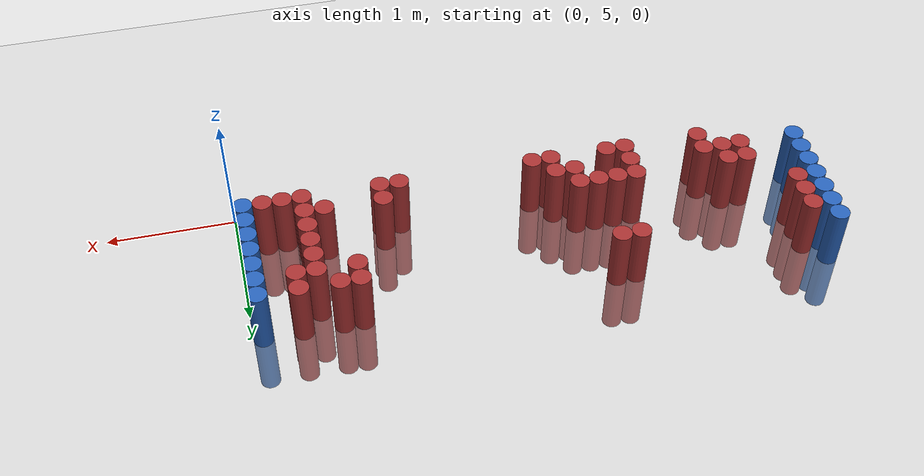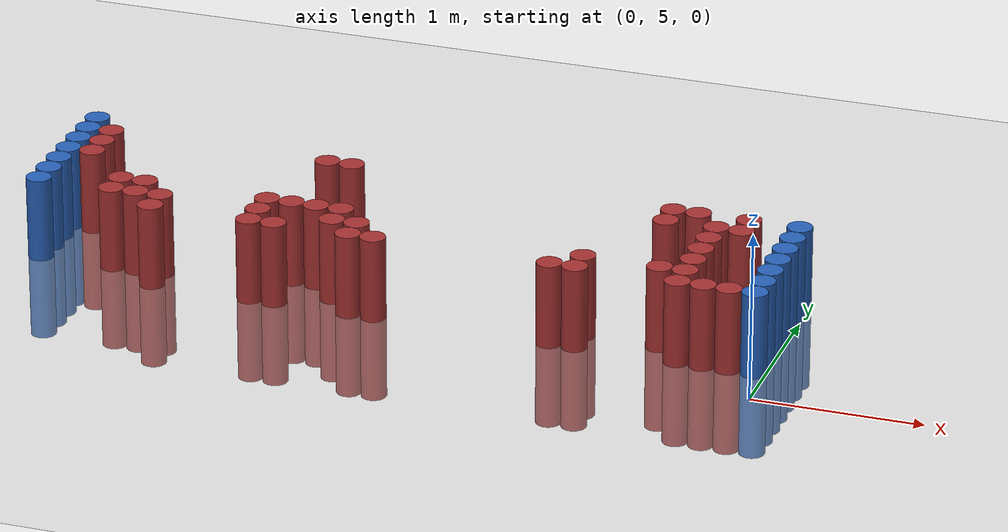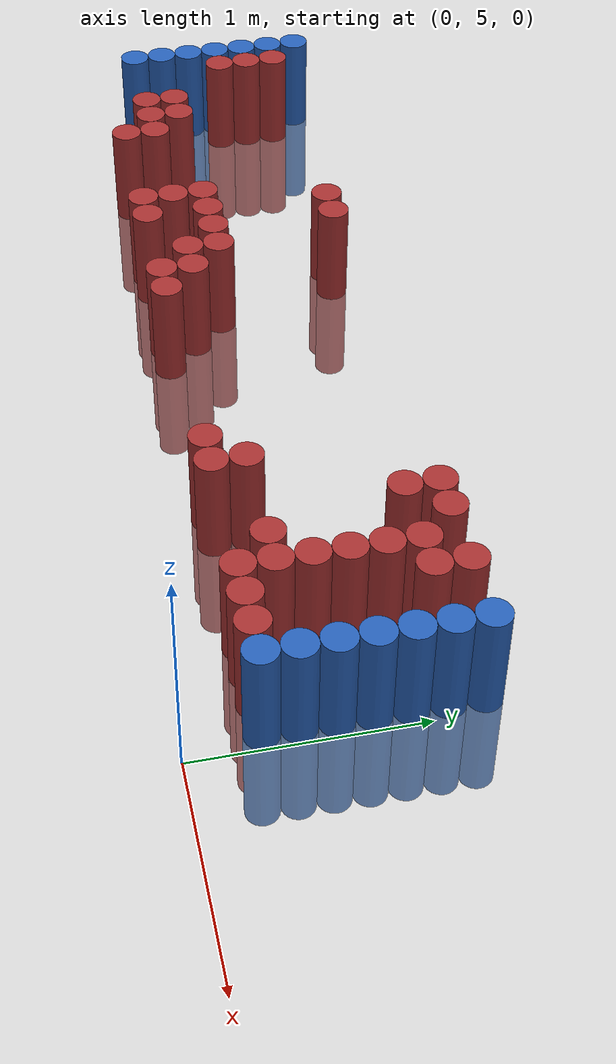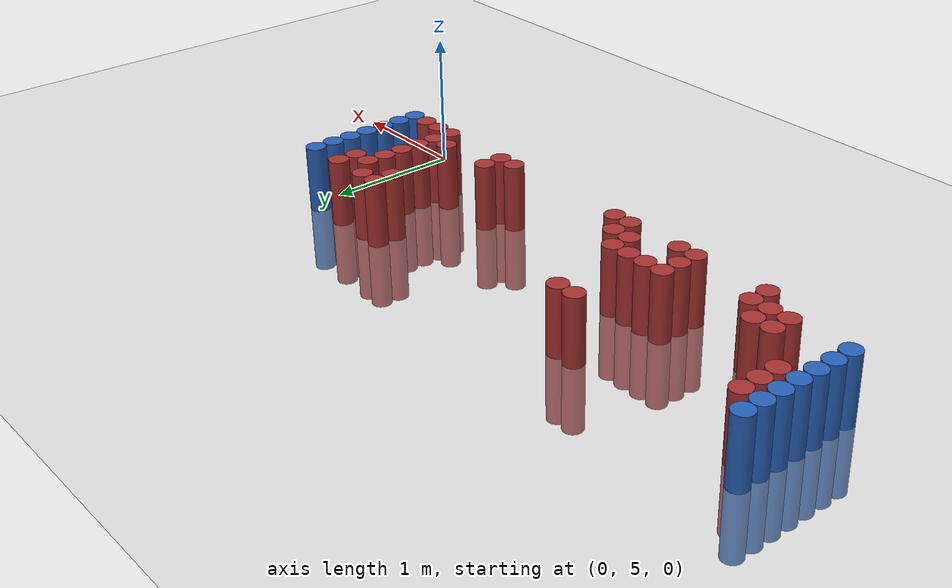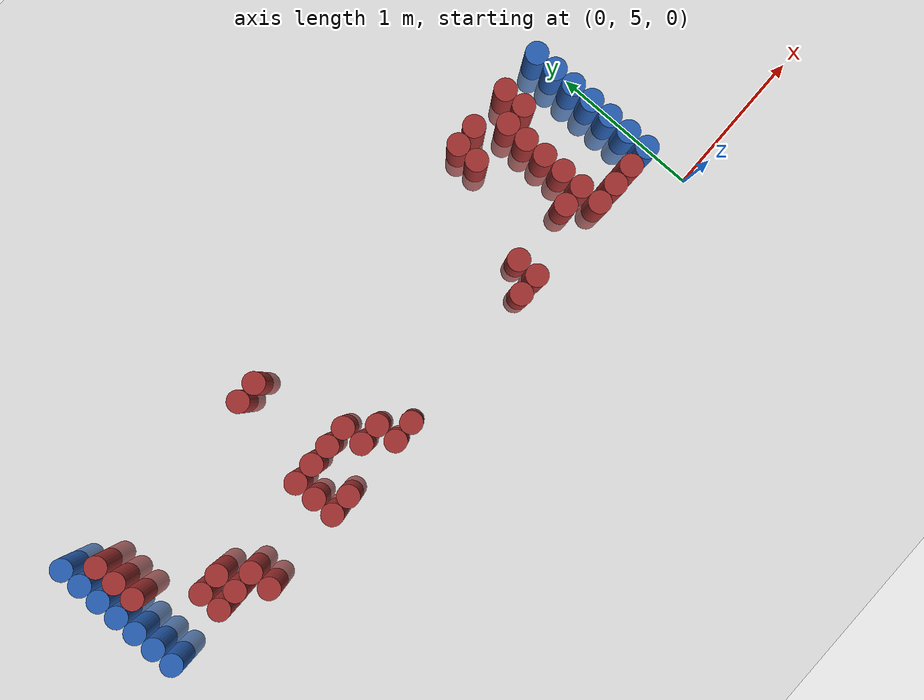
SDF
<sdf version="1.6">
 <world name="default">
  <model name="ground_plane">
   <static>1</static>
   <link name="link">
    <collision name="collision">
     <geometry><plane><normal>0 0 1</normal><size>100 100</size></plane></geometry>
     <surface><friction><ode><mu>100</mu><mu2>50</mu2></ode></friction></surface>
    </collision>
    <visual name="visual">
     <cast_shadows>0</cast_shadows>
     <geometry><plane><normal>0 0 1</normal><size>100 100</size></plane></geometry>
     <material>
      <script><uri>file://media/materials/scripts/gazebo.material</uri><name>Gazebo/Grey</name></script>
     </material>
    </visual>
   </link>
  </model>
  <model name="unit_cylinder_98">
   <static>1</static>
   <pose>-4.425000 5.475000 0.000000 0.000000 0.000000 0.000000</pose>
   <link name="link">
    <inertial>
     <mass>1</mass>
     <inertia><ixx>0.145833</ixx><ixy>0</ixy><ixz>0</ixz><iyy>0.145833</iyy><iyz>0</iyz><izz>0.125</izz></inertia>
    </inertial>
    <collision name="collision">
     <geometry><cylinder><radius>0.075000</radius><length>1</length></cylinder></geometry>
    </collision>
    <visual name="visual">
     <geometry><cylinder><radius>0.075000</radius><length>1</length></cylinder></geometry>
     <material>
      <ambient>0.152000 0.379000 0.720000 1</ambient>
      <diffuse>0.152000 0.379000 0.720000 1</diffuse>
     </material>
     <material>
      <script><name>Gazebo/Grey</name><uri>file://media/materials/scripts/gazebo.material</uri></script>
     </material>
    </visual>
   </link>
  </model>
  <model name="unit_cylinder_99">
   <static>1</static>
   <pose>-4.425000 5.625000 0.000000 0.000000 0.000000 0.000000</pose>
   <link name="link">
    <inertial>
     <mass>1</mass>
     <inertia><ixx>0.145833</ixx><ixy>0</ixy><ixz>0</ixz><iyy>0.145833</iyy><iyz>0</iyz><izz>0.125</izz></inertia>
    </inertial>
    <collision name="collision">
     <geometry><cylinder><radius>0.075000</radius><length>1</length></cylinder></geometry>
    </collision>
    <visual name="visual">
     <geometry><cylinder><radius>0.075000</radius><length>1</length></cylinder></geometry>
     <material>
      <ambient>0.152000 0.379000 0.720000 1</ambient>
      <diffuse>0.152000 0.379000 0.720000 1</diffuse>
     </material>
     <material>
      <script><name>Gazebo/Grey</name><uri>file://media/materials/scripts/gazebo.material</uri></script>
     </material>
    </visual>
   </link>
  </model>
  <model name="unit_cylinder_100">
   <static>1</static>
   <pose>-4.425000 5.775000 0.000000 0.000000 0.000000 0.000000</pose>
   <link name="link">
    <inertial>
     <mass>1</mass>
     <inertia><ixx>0.145833</ixx><ixy>0</ixy><ixz>0</ixz><iyy>0.145833</iyy><iyz>0</iyz><izz>0.125</izz></inertia>
    </inertial>
    <collision name="collision">
     <geometry><cylinder><radius>0.075000</radius><length>1</length></cylinder></geometry>
    </collision>
    <visual name="visual">
     <geometry><cylinder><radius>0.075000</radius><length>1</length></cylinder></geometry>
     <material>
      <ambient>0.152000 0.379000 0.720000 1</ambient>
      <diffuse>0.152000 0.379000 0.720000 1</diffuse>
     </material>
     <material>
      <script><name>Gazebo/Grey</name><uri>file://media/materials/scripts/gazebo.material</uri></script>
     </material>
    </visual>
   </link>
  </model>
  <model name="unit_cylinder_101">
   <static>1</static>
   <pose>-4.425000 5.925000 0.000000 0.000000 0.000000 0.000000</pose>
   <link name="link">
    <inertial>
     <mass>1</mass>
     <inertia><ixx>0.145833</ixx><ixy>0</ixy><ixz>0</ixz><iyy>0.145833</iyy><iyz>0</iyz><izz>0.125</izz></inertia>
    </inertial>
    <collision name="collision">
     <geometry><cylinder><radius>0.075000</radius><length>1</length></cylinder></geometry>
    </collision>
    <visual name="visual">
     <geometry><cylinder><radius>0.075000</radius><length>1</length></cylinder></geometry>
     <material>
      <ambient>0.152000 0.379000 0.720000 1</ambient>
      <diffuse>0.152000 0.379000 0.720000 1</diffuse>
     </material>
     <material>
      <script><name>Gazebo/Grey</name><uri>file://media/materials/scripts/gazebo.material</uri></script>
     </material>
    </visual>
   </link>
  </model>
  <model name="unit_cylinder_102">
   <static>1</static>
   <pose>-4.425000 6.075000 0.000000 0.000000 0.000000 0.000000</pose>
   <link name="link">
    <inertial>
     <mass>1</mass>
     <inertia><ixx>0.145833</ixx><ixy>0</ixy><ixz>0</ixz><iyy>0.145833</iyy><iyz>0</iyz><izz>0.125</izz></inertia>
    </inertial>
    <collision name="collision">
     <geometry><cylinder><radius>0.075000</radius><length>1</length></cylinder></geometry>
    </collision>
    <visual name="visual">
     <geometry><cylinder><radius>0.075000</radius><length>1</length></cylinder></geometry>
     <material>
      <ambient>0.152000 0.379000 0.720000 1</ambient>
      <diffuse>0.152000 0.379000 0.720000 1</diffuse>
     </material>
     <material>
      <script><name>Gazebo/Grey</name><uri>file://media/materials/scripts/gazebo.material</uri></script>
     </material>
    </visual>
   </link>
  </model>
  <model name="unit_cylinder_103">
   <static>1</static>
   <pose>-4.425000 6.225000 0.000000 0.000000 0.000000 0.000000</pose>
   <link name="link">
    <inertial>
     <mass>1</mass>
     <inertia><ixx>0.145833</ixx><ixy>0</ixy><ixz>0</ixz><iyy>0.145833</iyy><iyz>0</iyz><izz>0.125</izz></inertia>
    </inertial>
    <collision name="collision">
     <geometry><cylinder><radius>0.075000</radius><length>1</length></cylinder></geometry>
    </collision>
    <visual name="visual">
     <geometry><cylinder><radius>0.075000</radius><length>1</length></cylinder></geometry>
     <material>
      <ambient>0.152000 0.379000 0.720000 1</ambient>
      <diffuse>0.152000 0.379000 0.720000 1</diffuse>
     </material>
     <material>
      <script><name>Gazebo/Grey</name><uri>file://media/materials/scripts/gazebo.material</uri></script>
     </material>
    </visual>
   </link>
  </model>
  <model name="unit_cylinder_104">
   <static>1</static>
   <pose>-4.425000 6.375000 0.000000 0.000000 0.000000 0.000000</pose>
   <link name="link">
    <inertial>
     <mass>1</mass>
     <inertia><ixx>0.145833</ixx><ixy>0</ixy><ixz>0</ixz><iyy>0.145833</iyy><iyz>0</iyz><izz>0.125</izz></inertia>
    </inertial>
    <collision name="collision">
     <geometry><cylinder><radius>0.075000</radius><length>1</length></cylinder></geometry>
    </collision>
    <visual name="visual">
     <geometry><cylinder><radius>0.075000</radius><length>1</length></cylinder></geometry>
     <material>
      <ambient>0.152000 0.379000 0.720000 1</ambient>
      <diffuse>0.152000 0.379000 0.720000 1</diffuse>
     </material>
     <material>
      <script><name>Gazebo/Grey</name><uri>file://media/materials/scripts/gazebo.material</uri></script>
     </material>
    </visual>
   </link>
  </model>
  <model name="unit_cylinder_127">
   <static>1</static>
   <pose>-4.275000 5.925000 0.000000 0.000000 0.000000 0.000000</pose>
   <link name="link">
    <inertial>
     <mass>1</mass>
     <inertia><ixx>0.145833</ixx><ixy>0</ixy><ixz>0</ixz><iyy>0.145833</iyy><iyz>0</iyz><izz>0.125</izz></inertia>
    </inertial>
    <collision name="collision">
     <geometry><cylinder><radius>0.075000</radius><length>1</length></cylinder></geometry>
    </collision>
    <visual name="visual">
     <geometry><cylinder><radius>0.075000</radius><length>1</length></cylinder></geometry>
     <material>
      <ambient>0.648000 0.192000 0.192000 1</ambient>
      <diffuse>0.648000 0.192000 0.192000 1</diffuse>
     </material>
     <material>
      <script><name>Gazebo/Grey</name><uri>file://media/materials/scripts/gazebo.material</uri></script>
     </material>
    </visual>
   </link>
  </model>
  <model name="unit_cylinder_128">
   <static>1</static>
   <pose>-4.275000 6.075000 0.000000 0.000000 0.000000 0.000000</pose>
   <link name="link">
    <inertial>
     <mass>1</mass>
     <inertia><ixx>0.145833</ixx><ixy>0</ixy><ixz>0</ixz><iyy>0.145833</iyy><iyz>0</iyz><izz>0.125</izz></inertia>
    </inertial>
    <collision name="collision">
     <geometry><cylinder><radius>0.075000</radius><length>1</length></cylinder></geometry>
    </collision>
    <visual name="visual">
     <geometry><cylinder><radius>0.075000</radius><length>1</length></cylinder></geometry>
     <material>
      <ambient>0.648000 0.192000 0.192000 1</ambient>
      <diffuse>0.648000 0.192000 0.192000 1</diffuse>
     </material>
     <material>
      <script><name>Gazebo/Grey</name><uri>file://media/materials/scripts/gazebo.material</uri></script>
     </material>
    </visual>
   </link>
  </model>
  <model name="unit_cylinder_129">
   <static>1</static>
   <pose>-4.275000 6.225000 0.000000 0.000000 0.000000 0.000000</pose>
   <link name="link">
    <inertial>
     <mass>1</mass>
     <inertia><ixx>0.145833</ixx><ixy>0</ixy><ixz>0</ixz><iyy>0.145833</iyy><iyz>0</iyz><izz>0.125</izz></inertia>
    </inertial>
    <collision name="collision">
     <geometry><cylinder><radius>0.075000</radius><length>1</length></cylinder></geometry>
    </collision>
    <visual name="visual">
     <geometry><cylinder><radius>0.075000</radius><length>1</length></cylinder></geometry>
     <material>
      <ambient>0.648000 0.192000 0.192000 1</ambient>
      <diffuse>0.648000 0.192000 0.192000 1</diffuse>
     </material>
     <material>
      <script><name>Gazebo/Grey</name><uri>file://media/materials/scripts/gazebo.material</uri></script>
     </material>
    </visual>
   </link>
  </model>
  <model name="unit_cylinder_148">
   <static>1</static>
   <pose>-3.975000 5.475000 0.000000 0.000000 0.000000 0.000000</pose>
   <link name="link">
    <inertial>
     <mass>1</mass>
     <inertia><ixx>0.145833</ixx><ixy>0</ixy><ixz>0</ixz><iyy>0.145833</iyy><iyz>0</iyz><izz>0.125</izz></inertia>
    </inertial>
    <collision name="collision">
     <geometry><cylinder><radius>0.075000</radius><length>1</length></cylinder></geometry>
    </collision>
    <visual name="visual">
     <geometry><cylinder><radius>0.075000</radius><length>1</length></cylinder></geometry>
     <material>
      <ambient>0.648000 0.192000 0.192000 1</ambient>
      <diffuse>0.648000 0.192000 0.192000 1</diffuse>
     </material>
     <material>
      <script><name>Gazebo/Grey</name><uri>file://media/materials/scripts/gazebo.material</uri></script>
     </material>
    </visual>
   </link>
  </model>
  <model name="unit_cylinder_149">
   <static>1</static>
   <pose>-3.975000 5.625000 0.000000 0.000000 0.000000 0.000000</pose>
   <link name="link">
    <inertial>
     <mass>1</mass>
     <inertia><ixx>0.145833</ixx><ixy>0</ixy><ixz>0</ixz><iyy>0.145833</iyy><iyz>0</iyz><izz>0.125</izz></inertia>
    </inertial>
    <collision name="collision">
     <geometry><cylinder><radius>0.075000</radius><length>1</length></cylinder></geometry>
    </collision>
    <visual name="visual">
     <geometry><cylinder><radius>0.075000</radius><length>1</length></cylinder></geometry>
     <material>
      <ambient>0.648000 0.192000 0.192000 1</ambient>
      <diffuse>0.648000 0.192000 0.192000 1</diffuse>
     </material>
     <material>
      <script><name>Gazebo/Grey</name><uri>file://media/materials/scripts/gazebo.material</uri></script>
     </material>
    </visual>
   </link>
  </model>
  <model name="unit_cylinder_153">
   <static>1</static>
   <pose>-3.825000 5.475000 0.000000 0.000000 0.000000 0.000000</pose>
   <link name="link">
    <inertial>
     <mass>1</mass>
     <inertia><ixx>0.145833</ixx><ixy>0</ixy><ixz>0</ixz><iyy>0.145833</iyy><iyz>0</iyz><izz>0.125</izz></inertia>
    </inertial>
    <collision name="collision">
     <geometry><cylinder><radius>0.075000</radius><length>1</length></cylinder></geometry>
    </collision>
    <visual name="visual">
     <geometry><cylinder><radius>0.075000</radius><length>1</length></cylinder></geometry>
     <material>
      <ambient>0.648000 0.192000 0.192000 1</ambient>
      <diffuse>0.648000 0.192000 0.192000 1</diffuse>
     </material>
     <material>
      <script><name>Gazebo/Grey</name><uri>file://media/materials/scripts/gazebo.material</uri></script>
     </material>
    </visual>
   </link>
  </model>
  <model name="unit_cylinder_154">
   <static>1</static>
   <pose>-3.825000 5.625000 0.000000 0.000000 0.000000 0.000000</pose>
   <link name="link">
    <inertial>
     <mass>1</mass>
     <inertia><ixx>0.145833</ixx><ixy>0</ixy><ixz>0</ixz><iyy>0.145833</iyy><iyz>0</iyz><izz>0.125</izz></inertia>
    </inertial>
    <collision name="collision">
     <geometry><cylinder><radius>0.075000</radius><length>1</length></cylinder></geometry>
    </collision>
    <visual name="visual">
     <geometry><cylinder><radius>0.075000</radius><length>1</length></cylinder></geometry>
     <material>
      <ambient>0.648000 0.192000 0.192000 1</ambient>
      <diffuse>0.648000 0.192000 0.192000 1</diffuse>
     </material>
     <material>
      <script><name>Gazebo/Grey</name><uri>file://media/materials/scripts/gazebo.material</uri></script>
     </material>
    </visual>
   </link>
  </model>
  <model name="unit_cylinder_162">
   <static>1</static>
   <pose>-3.675000 5.325000 0.000000 0.000000 0.000000 0.000000</pose>
   <link name="link">
    <inertial>
     <mass>1</mass>
     <inertia><ixx>0.145833</ixx><ixy>0</ixy><ixz>0</ixz><iyy>0.145833</iyy><iyz>0</iyz><izz>0.125</izz></inertia>
    </inertial>
    <collision name="collision">
     <geometry><cylinder><radius>0.075000</radius><length>1</length></cylinder></geometry>
    </collision>
    <visual name="visual">
     <geometry><cylinder><radius>0.075000</radius><length>1</length></cylinder></geometry>
     <material>
      <ambient>0.648000 0.192000 0.192000 1</ambient>
      <diffuse>0.648000 0.192000 0.192000 1</diffuse>
     </material>
     <material>
      <script><name>Gazebo/Grey</name><uri>file://media/materials/scripts/gazebo.material</uri></script>
     </material>
    </visual>
   </link>
  </model>
  <model name="unit_cylinder_163">
   <static>1</static>
   <pose>-3.675000 5.475000 0.000000 0.000000 0.000000 0.000000</pose>
   <link name="link">
    <inertial>
     <mass>1</mass>
     <inertia><ixx>0.145833</ixx><ixy>0</ixy><ixz>0</ixz><iyy>0.145833</iyy><iyz>0</iyz><izz>0.125</izz></inertia>
    </inertial>
    <collision name="collision">
     <geometry><cylinder><radius>0.075000</radius><length>1</length></cylinder></geometry>
    </collision>
    <visual name="visual">
     <geometry><cylinder><radius>0.075000</radius><length>1</length></cylinder></geometry>
     <material>
      <ambient>0.648000 0.192000 0.192000 1</ambient>
      <diffuse>0.648000 0.192000 0.192000 1</diffuse>
     </material>
     <material>
      <script><name>Gazebo/Grey</name><uri>file://media/materials/scripts/gazebo.material</uri></script>
     </material>
    </visual>
   </link>
  </model>
  <model name="unit_cylinder_179">
   <static>1</static>
   <pose>-3.075000 5.325000 0.000000 0.000000 0.000000 0.000000</pose>
   <link name="link">
    <inertial>
     <mass>1</mass>
     <inertia><ixx>0.145833</ixx><ixy>0</ixy><ixz>0</ixz><iyy>0.145833</iyy><iyz>0</iyz><izz>0.125</izz></inertia>
    </inertial>
    <collision name="collision">
     <geometry><cylinder><radius>0.075000</radius><length>1</length></cylinder></geometry>
    </collision>
    <visual name="visual">
     <geometry><cylinder><radius>0.075000</radius><length>1</length></cylinder></geometry>
     <material>
      <ambient>0.648000 0.192000 0.192000 1</ambient>
      <diffuse>0.648000 0.192000 0.192000 1</diffuse>
     </material>
     <material>
      <script><name>Gazebo/Grey</name><uri>file://media/materials/scripts/gazebo.material</uri></script>
     </material>
    </visual>
   </link>
  </model>
  <model name="unit_cylinder_180">
   <static>1</static>
   <pose>-3.075000 5.475000 0.000000 0.000000 0.000000 0.000000</pose>
   <link name="link">
    <inertial>
     <mass>1</mass>
     <inertia><ixx>0.145833</ixx><ixy>0</ixy><ixz>0</ixz><iyy>0.145833</iyy><iyz>0</iyz><izz>0.125</izz></inertia>
    </inertial>
    <collision name="collision">
     <geometry><cylinder><radius>0.075000</radius><length>1</length></cylinder></geometry>
    </collision>
    <visual name="visual">
     <geometry><cylinder><radius>0.075000</radius><length>1</length></cylinder></geometry>
     <material>
      <ambient>0.648000 0.192000 0.192000 1</ambient>
      <diffuse>0.648000 0.192000 0.192000 1</diffuse>
     </material>
     <material>
      <script><name>Gazebo/Grey</name><uri>file://media/materials/scripts/gazebo.material</uri></script>
     </material>
    </visual>
   </link>
  </model>
  <model name="unit_cylinder_181">
   <static>1</static>
   <pose>-3.075000 5.625000 0.000000 0.000000 0.000000 0.000000</pose>
   <link name="link">
    <inertial>
     <mass>1</mass>
     <inertia><ixx>0.145833</ixx><ixy>0</ixy><ixz>0</ixz><iyy>0.145833</iyy><iyz>0</iyz><izz>0.125</izz></inertia>
    </inertial>
    <collision name="collision">
     <geometry><cylinder><radius>0.075000</radius><length>1</length></cylinder></geometry>
    </collision>
    <visual name="visual">
     <geometry><cylinder><radius>0.075000</radius><length>1</length></cylinder></geometry>
     <material>
      <ambient>0.648000 0.192000 0.192000 1</ambient>
      <diffuse>0.648000 0.192000 0.192000 1</diffuse>
     </material>
     <material>
      <script><name>Gazebo/Grey</name><uri>file://media/materials/scripts/gazebo.material</uri></script>
     </material>
    </visual>
   </link>
  </model>
  <model name="unit_cylinder_188">
   <static>1</static>
   <pose>-2.925000 5.325000 0.000000 0.000000 0.000000 0.000000</pose>
   <link name="link">
    <inertial>
     <mass>1</mass>
     <inertia><ixx>0.145833</ixx><ixy>0</ixy><ixz>0</ixz><iyy>0.145833</iyy><iyz>0</iyz><izz>0.125</izz></inertia>
    </inertial>
    <collision name="collision">
     <geometry><cylinder><radius>0.075000</radius><length>1</length></cylinder></geometry>
    </collision>
    <visual name="visual">
     <geometry><cylinder><radius>0.075000</radius><length>1</length></cylinder></geometry>
     <material>
      <ambient>0.648000 0.192000 0.192000 1</ambient>
      <diffuse>0.648000 0.192000 0.192000 1</diffuse>
     </material>
     <material>
      <script><name>Gazebo/Grey</name><uri>file://media/materials/scripts/gazebo.material</uri></script>
     </material>
    </visual>
   </link>
  </model>
  <model name="unit_cylinder_189">
   <static>1</static>
   <pose>-2.925000 5.625000 0.000000 0.000000 0.000000 0.000000</pose>
   <link name="link">
    <inertial>
     <mass>1</mass>
     <inertia><ixx>0.145833</ixx><ixy>0</ixy><ixz>0</ixz><iyy>0.145833</iyy><iyz>0</iyz><izz>0.125</izz></inertia>
    </inertial>
    <collision name="collision">
     <geometry><cylinder><radius>0.075000</radius><length>1</length></cylinder></geometry>
    </collision>
    <visual name="visual">
     <geometry><cylinder><radius>0.075000</radius><length>1</length></cylinder></geometry>
     <material>
      <ambient>0.648000 0.192000 0.192000 1</ambient>
      <diffuse>0.648000 0.192000 0.192000 1</diffuse>
     </material>
     <material>
      <script><name>Gazebo/Grey</name><uri>file://media/materials/scripts/gazebo.material</uri></script>
     </material>
    </visual>
   </link>
  </model>
  <model name="unit_cylinder_190">
   <static>1</static>
   <pose>-2.925000 6.225000 0.000000 0.000000 0.000000 0.000000</pose>
   <link name="link">
    <inertial>
     <mass>1</mass>
     <inertia><ixx>0.145833</ixx><ixy>0</ixy><ixz>0</ixz><iyy>0.145833</iyy><iyz>0</iyz><izz>0.125</izz></inertia>
    </inertial>
    <collision name="collision">
     <geometry><cylinder><radius>0.075000</radius><length>1</length></cylinder></geometry>
    </collision>
    <visual name="visual">
     <geometry><cylinder><radius>0.075000</radius><length>1</length></cylinder></geometry>
     <material>
      <ambient>0.648000 0.192000 0.192000 1</ambient>
      <diffuse>0.648000 0.192000 0.192000 1</diffuse>
     </material>
     <material>
      <script><name>Gazebo/Grey</name><uri>file://media/materials/scripts/gazebo.material</uri></script>
     </material>
    </visual>
   </link>
  </model>
  <model name="unit_cylinder_199">
   <static>1</static>
   <pose>-2.775000 5.625000 0.000000 0.000000 0.000000 0.000000</pose>
   <link name="link">
    <inertial>
     <mass>1</mass>
     <inertia><ixx>0.145833</ixx><ixy>0</ixy><ixz>0</ixz><iyy>0.145833</iyy><iyz>0</iyz><izz>0.125</izz></inertia>
    </inertial>
    <collision name="collision">
     <geometry><cylinder><radius>0.075000</radius><length>1</length></cylinder></geometry>
    </collision>
    <visual name="visual">
     <geometry><cylinder><radius>0.075000</radius><length>1</length></cylinder></geometry>
     <material>
      <ambient>0.648000 0.192000 0.192000 1</ambient>
      <diffuse>0.648000 0.192000 0.192000 1</diffuse>
     </material>
     <material>
      <script><name>Gazebo/Grey</name><uri>file://media/materials/scripts/gazebo.material</uri></script>
     </material>
    </visual>
   </link>
  </model>
  <model name="unit_cylinder_200">
   <static>1</static>
   <pose>-2.775000 6.225000 0.000000 0.000000 0.000000 0.000000</pose>
   <link name="link">
    <inertial>
     <mass>1</mass>
     <inertia><ixx>0.145833</ixx><ixy>0</ixy><ixz>0</ixz><iyy>0.145833</iyy><iyz>0</iyz><izz>0.125</izz></inertia>
    </inertial>
    <collision name="collision">
     <geometry><cylinder><radius>0.075000</radius><length>1</length></cylinder></geometry>
    </collision>
    <visual name="visual">
     <geometry><cylinder><radius>0.075000</radius><length>1</length></cylinder></geometry>
     <material>
      <ambient>0.648000 0.192000 0.192000 1</ambient>
      <diffuse>0.648000 0.192000 0.192000 1</diffuse>
     </material>
     <material>
      <script><name>Gazebo/Grey</name><uri>file://media/materials/scripts/gazebo.material</uri></script>
     </material>
    </visual>
   </link>
  </model>
  <model name="unit_cylinder_207">
   <static>1</static>
   <pose>-2.625000 5.475000 0.000000 0.000000 0.000000 0.000000</pose>
   <link name="link">
    <inertial>
     <mass>1</mass>
     <inertia><ixx>0.145833</ixx><ixy>0</ixy><ixz>0</ixz><iyy>0.145833</iyy><iyz>0</iyz><izz>0.125</izz></inertia>
    </inertial>
    <collision name="collision">
     <geometry><cylinder><radius>0.075000</radius><length>1</length></cylinder></geometry>
    </collision>
    <visual name="visual">
     <geometry><cylinder><radius>0.075000</radius><length>1</length></cylinder></geometry>
     <material>
      <ambient>0.648000 0.192000 0.192000 1</ambient>
      <diffuse>0.648000 0.192000 0.192000 1</diffuse>
     </material>
     <material>
      <script><name>Gazebo/Grey</name><uri>file://media/materials/scripts/gazebo.material</uri></script>
     </material>
    </visual>
   </link>
  </model>
  <model name="unit_cylinder_208">
   <static>1</static>
   <pose>-2.625000 5.625000 0.000000 0.000000 0.000000 0.000000</pose>
   <link name="link">
    <inertial>
     <mass>1</mass>
     <inertia><ixx>0.145833</ixx><ixy>0</ixy><ixz>0</ixz><iyy>0.145833</iyy><iyz>0</iyz><izz>0.125</izz></inertia>
    </inertial>
    <collision name="collision">
     <geometry><cylinder><radius>0.075000</radius><length>1</length></cylinder></geometry>
    </collision>
    <visual name="visual">
     <geometry><cylinder><radius>0.075000</radius><length>1</length></cylinder></geometry>
     <material>
      <ambient>0.648000 0.192000 0.192000 1</ambient>
      <diffuse>0.648000 0.192000 0.192000 1</diffuse>
     </material>
     <material>
      <script><name>Gazebo/Grey</name><uri>file://media/materials/scripts/gazebo.material</uri></script>
     </material>
    </visual>
   </link>
  </model>
  <model name="unit_cylinder_216">
   <static>1</static>
   <pose>-2.475000 5.325000 0.000000 0.000000 0.000000 0.000000</pose>
   <link name="link">
    <inertial>
     <mass>1</mass>
     <inertia><ixx>0.145833</ixx><ixy>0</ixy><ixz>0</ixz><iyy>0.145833</iyy><iyz>0</iyz><izz>0.125</izz></inertia>
    </inertial>
    <collision name="collision">
     <geometry><cylinder><radius>0.075000</radius><length>1</length></cylinder></geometry>
    </collision>
    <visual name="visual">
     <geometry><cylinder><radius>0.075000</radius><length>1</length></cylinder></geometry>
     <material>
      <ambient>0.648000 0.192000 0.192000 1</ambient>
      <diffuse>0.648000 0.192000 0.192000 1</diffuse>
     </material>
     <material>
      <script><name>Gazebo/Grey</name><uri>file://media/materials/scripts/gazebo.material</uri></script>
     </material>
    </visual>
   </link>
  </model>
  <model name="unit_cylinder_217">
   <static>1</static>
   <pose>-2.475000 5.475000 0.000000 0.000000 0.000000 0.000000</pose>
   <link name="link">
    <inertial>
     <mass>1</mass>
     <inertia><ixx>0.145833</ixx><ixy>0</ixy><ixz>0</ixz><iyy>0.145833</iyy><iyz>0</iyz><izz>0.125</izz></inertia>
    </inertial>
    <collision name="collision">
     <geometry><cylinder><radius>0.075000</radius><length>1</length></cylinder></geometry>
    </collision>
    <visual name="visual">
     <geometry><cylinder><radius>0.075000</radius><length>1</length></cylinder></geometry>
     <material>
      <ambient>0.648000 0.192000 0.192000 1</ambient>
      <diffuse>0.648000 0.192000 0.192000 1</diffuse>
     </material>
     <material>
      <script><name>Gazebo/Grey</name><uri>file://media/materials/scripts/gazebo.material</uri></script>
     </material>
    </visual>
   </link>
  </model>
  <model name="unit_cylinder_223">
   <static>1</static>
   <pose>-2.325000 5.325000 0.000000 0.000000 0.000000 0.000000</pose>
   <link name="link">
    <inertial>
     <mass>1</mass>
     <inertia><ixx>0.145833</ixx><ixy>0</ixy><ixz>0</ixz><iyy>0.145833</iyy><iyz>0</iyz><izz>0.125</izz></inertia>
    </inertial>
    <collision name="collision">
     <geometry><cylinder><radius>0.075000</radius><length>1</length></cylinder></geometry>
    </collision>
    <visual name="visual">
     <geometry><cylinder><radius>0.075000</radius><length>1</length></cylinder></geometry>
     <material>
      <ambient>0.648000 0.192000 0.192000 1</ambient>
      <diffuse>0.648000 0.192000 0.192000 1</diffuse>
     </material>
     <material>
      <script><name>Gazebo/Grey</name><uri>file://media/materials/scripts/gazebo.material</uri></script>
     </material>
    </visual>
   </link>
  </model>
  <model name="unit_cylinder_232">
   <static>1</static>
   <pose>-1.275000 5.325000 0.000000 0.000000 0.000000 0.000000</pose>
   <link name="link">
    <inertial>
     <mass>1</mass>
     <inertia><ixx>0.145833</ixx><ixy>0</ixy><ixz>0</ixz><iyy>0.145833</iyy><iyz>0</iyz><izz>0.125</izz></inertia>
    </inertial>
    <collision name="collision">
     <geometry><cylinder><radius>0.075000</radius><length>1</length></cylinder></geometry>
    </collision>
    <visual name="visual">
     <geometry><cylinder><radius>0.075000</radius><length>1</length></cylinder></geometry>
     <material>
      <ambient>0.648000 0.192000 0.192000 1</ambient>
      <diffuse>0.648000 0.192000 0.192000 1</diffuse>
     </material>
     <material>
      <script><name>Gazebo/Grey</name><uri>file://media/materials/scripts/gazebo.material</uri></script>
     </material>
    </visual>
   </link>
  </model>
  <model name="unit_cylinder_235">
   <static>1</static>
   <pose>-1.125000 5.325000 0.000000 0.000000 0.000000 0.000000</pose>
   <link name="link">
    <inertial>
     <mass>1</mass>
     <inertia><ixx>0.145833</ixx><ixy>0</ixy><ixz>0</ixz><iyy>0.145833</iyy><iyz>0</iyz><izz>0.125</izz></inertia>
    </inertial>
    <collision name="collision">
     <geometry><cylinder><radius>0.075000</radius><length>1</length></cylinder></geometry>
    </collision>
    <visual name="visual">
     <geometry><cylinder><radius>0.075000</radius><length>1</length></cylinder></geometry>
     <material>
      <ambient>0.648000 0.192000 0.192000 1</ambient>
      <diffuse>0.648000 0.192000 0.192000 1</diffuse>
     </material>
     <material>
      <script><name>Gazebo/Grey</name><uri>file://media/materials/scripts/gazebo.material</uri></script>
     </material>
    </visual>
   </link>
  </model>
  <model name="unit_cylinder_236">
   <static>1</static>
   <pose>-1.125000 5.475000 0.000000 0.000000 0.000000 0.000000</pose>
   <link name="link">
    <inertial>
     <mass>1</mass>
     <inertia><ixx>0.145833</ixx><ixy>0</ixy><ixz>0</ixz><iyy>0.145833</iyy><iyz>0</iyz><izz>0.125</izz></inertia>
    </inertial>
    <collision name="collision">
     <geometry><cylinder><radius>0.075000</radius><length>1</length></cylinder></geometry>
    </collision>
    <visual name="visual">
     <geometry><cylinder><radius>0.075000</radius><length>1</length></cylinder></geometry>
     <material>
      <ambient>0.648000 0.192000 0.192000 1</ambient>
      <diffuse>0.648000 0.192000 0.192000 1</diffuse>
     </material>
     <material>
      <script><name>Gazebo/Grey</name><uri>file://media/materials/scripts/gazebo.material</uri></script>
     </material>
    </visual>
   </link>
  </model>
  <model name="unit_cylinder_242">
   <static>1</static>
   <pose>-0.825000 6.075000 0.000000 0.000000 0.000000 0.000000</pose>
   <link name="link">
    <inertial>
     <mass>1</mass>
     <inertia><ixx>0.145833</ixx><ixy>0</ixy><ixz>0</ixz><iyy>0.145833</iyy><iyz>0</iyz><izz>0.125</izz></inertia>
    </inertial>
    <collision name="collision">
     <geometry><cylinder><radius>0.075000</radius><length>1</length></cylinder></geometry>
    </collision>
    <visual name="visual">
     <geometry><cylinder><radius>0.075000</radius><length>1</length></cylinder></geometry>
     <material>
      <ambient>0.648000 0.192000 0.192000 1</ambient>
      <diffuse>0.648000 0.192000 0.192000 1</diffuse>
     </material>
     <material>
      <script><name>Gazebo/Grey</name><uri>file://media/materials/scripts/gazebo.material</uri></script>
     </material>
    </visual>
   </link>
  </model>
  <model name="unit_cylinder_243">
   <static>1</static>
   <pose>-0.825000 6.225000 0.000000 0.000000 0.000000 0.000000</pose>
   <link name="link">
    <inertial>
     <mass>1</mass>
     <inertia><ixx>0.145833</ixx><ixy>0</ixy><ixz>0</ixz><iyy>0.145833</iyy><iyz>0</iyz><izz>0.125</izz></inertia>
    </inertial>
    <collision name="collision">
     <geometry><cylinder><radius>0.075000</radius><length>1</length></cylinder></geometry>
    </collision>
    <visual name="visual">
     <geometry><cylinder><radius>0.075000</radius><length>1</length></cylinder></geometry>
     <material>
      <ambient>0.648000 0.192000 0.192000 1</ambient>
      <diffuse>0.648000 0.192000 0.192000 1</diffuse>
     </material>
     <material>
      <script><name>Gazebo/Grey</name><uri>file://media/materials/scripts/gazebo.material</uri></script>
     </material>
    </visual>
   </link>
  </model>
  <model name="unit_cylinder_245">
   <static>1</static>
   <pose>-0.675000 5.475000 0.000000 0.000000 0.000000 0.000000</pose>
   <link name="link">
    <inertial>
     <mass>1</mass>
     <inertia><ixx>0.145833</ixx><ixy>0</ixy><ixz>0</ixz><iyy>0.145833</iyy><iyz>0</iyz><izz>0.125</izz></inertia>
    </inertial>
    <collision name="collision">
     <geometry><cylinder><radius>0.075000</radius><length>1</length></cylinder></geometry>
    </collision>
    <visual name="visual">
     <geometry><cylinder><radius>0.075000</radius><length>1</length></cylinder></geometry>
     <material>
      <ambient>0.648000 0.192000 0.192000 1</ambient>
      <diffuse>0.648000 0.192000 0.192000 1</diffuse>
     </material>
     <material>
      <script><name>Gazebo/Grey</name><uri>file://media/materials/scripts/gazebo.material</uri></script>
     </material>
    </visual>
   </link>
  </model>
  <model name="unit_cylinder_246">
   <static>1</static>
   <pose>-0.675000 6.225000 0.000000 0.000000 0.000000 0.000000</pose>
   <link name="link">
    <inertial>
     <mass>1</mass>
     <inertia><ixx>0.145833</ixx><ixy>0</ixy><ixz>0</ixz><iyy>0.145833</iyy><iyz>0</iyz><izz>0.125</izz></inertia>
    </inertial>
    <collision name="collision">
     <geometry><cylinder><radius>0.075000</radius><length>1</length></cylinder></geometry>
    </collision>
    <visual name="visual">
     <geometry><cylinder><radius>0.075000</radius><length>1</length></cylinder></geometry>
     <material>
      <ambient>0.648000 0.192000 0.192000 1</ambient>
      <diffuse>0.648000 0.192000 0.192000 1</diffuse>
     </material>
     <material>
      <script><name>Gazebo/Grey</name><uri>file://media/materials/scripts/gazebo.material</uri></script>
     </material>
    </visual>
   </link>
  </model>
  <model name="unit_cylinder_251">
   <static>1</static>
   <pose>-0.525000 5.325000 0.000000 0.000000 0.000000 0.000000</pose>
   <link name="link">
    <inertial>
     <mass>1</mass>
     <inertia><ixx>0.145833</ixx><ixy>0</ixy><ixz>0</ixz><iyy>0.145833</iyy><iyz>0</iyz><izz>0.125</izz></inertia>
    </inertial>
    <collision name="collision">
     <geometry><cylinder><radius>0.075000</radius><length>1</length></cylinder></geometry>
    </collision>
    <visual name="visual">
     <geometry><cylinder><radius>0.075000</radius><length>1</length></cylinder></geometry>
     <material>
      <ambient>0.648000 0.192000 0.192000 1</ambient>
      <diffuse>0.648000 0.192000 0.192000 1</diffuse>
     </material>
     <material>
      <script><name>Gazebo/Grey</name><uri>file://media/materials/scripts/gazebo.material</uri></script>
     </material>
    </visual>
   </link>
  </model>
  <model name="unit_cylinder_252">
   <static>1</static>
   <pose>-0.525000 5.475000 0.000000 0.000000 0.000000 0.000000</pose>
   <link name="link">
    <inertial>
     <mass>1</mass>
     <inertia><ixx>0.145833</ixx><ixy>0</ixy><ixz>0</ixz><iyy>0.145833</iyy><iyz>0</iyz><izz>0.125</izz></inertia>
    </inertial>
    <collision name="collision">
     <geometry><cylinder><radius>0.075000</radius><length>1</length></cylinder></geometry>
    </collision>
    <visual name="visual">
     <geometry><cylinder><radius>0.075000</radius><length>1</length></cylinder></geometry>
     <material>
      <ambient>0.648000 0.192000 0.192000 1</ambient>
      <diffuse>0.648000 0.192000 0.192000 1</diffuse>
     </material>
     <material>
      <script><name>Gazebo/Grey</name><uri>file://media/materials/scripts/gazebo.material</uri></script>
     </material>
    </visual>
   </link>
  </model>
  <model name="unit_cylinder_253">
   <static>1</static>
   <pose>-0.525000 5.625000 0.000000 0.000000 0.000000 0.000000</pose>
   <link name="link">
    <inertial>
     <mass>1</mass>
     <inertia><ixx>0.145833</ixx><ixy>0</ixy><ixz>0</ixz><iyy>0.145833</iyy><iyz>0</iyz><izz>0.125</izz></inertia>
    </inertial>
    <collision name="collision">
     <geometry><cylinder><radius>0.075000</radius><length>1</length></cylinder></geometry>
    </collision>
    <visual name="visual">
     <geometry><cylinder><radius>0.075000</radius><length>1</length></cylinder></geometry>
     <material>
      <ambient>0.648000 0.192000 0.192000 1</ambient>
      <diffuse>0.648000 0.192000 0.192000 1</diffuse>
     </material>
     <material>
      <script><name>Gazebo/Grey</name><uri>file://media/materials/scripts/gazebo.material</uri></script>
     </material>
    </visual>
   </link>
  </model>
  <model name="unit_cylinder_254">
   <static>1</static>
   <pose>-0.525000 5.775000 0.000000 0.000000 0.000000 0.000000</pose>
   <link name="link">
    <inertial>
     <mass>1</mass>
     <inertia><ixx>0.145833</ixx><ixy>0</ixy><ixz>0</ixz><iyy>0.145833</iyy><iyz>0</iyz><izz>0.125</izz></inertia>
    </inertial>
    <collision name="collision">
     <geometry><cylinder><radius>0.075000</radius><length>1</length></cylinder></geometry>
    </collision>
    <visual name="visual">
     <geometry><cylinder><radius>0.075000</radius><length>1</length></cylinder></geometry>
     <material>
      <ambient>0.648000 0.192000 0.192000 1</ambient>
      <diffuse>0.648000 0.192000 0.192000 1</diffuse>
     </material>
     <material>
      <script><name>Gazebo/Grey</name><uri>file://media/materials/scripts/gazebo.material</uri></script>
     </material>
    </visual>
   </link>
  </model>
  <model name="unit_cylinder_255">
   <static>1</static>
   <pose>-0.525000 5.925000 0.000000 0.000000 0.000000 0.000000</pose>
   <link name="link">
    <inertial>
     <mass>1</mass>
     <inertia><ixx>0.145833</ixx><ixy>0</ixy><ixz>0</ixz><iyy>0.145833</iyy><iyz>0</iyz><izz>0.125</izz></inertia>
    </inertial>
    <collision name="collision">
     <geometry><cylinder><radius>0.075000</radius><length>1</length></cylinder></geometry>
    </collision>
    <visual name="visual">
     <geometry><cylinder><radius>0.075000</radius><length>1</length></cylinder></geometry>
     <material>
      <ambient>0.648000 0.192000 0.192000 1</ambient>
      <diffuse>0.648000 0.192000 0.192000 1</diffuse>
     </material>
     <material>
      <script><name>Gazebo/Grey</name><uri>file://media/materials/scripts/gazebo.material</uri></script>
     </material>
    </visual>
   </link>
  </model>
  <model name="unit_cylinder_256">
   <static>1</static>
   <pose>-0.525000 6.075000 0.000000 0.000000 0.000000 0.000000</pose>
   <link name="link">
    <inertial>
     <mass>1</mass>
     <inertia><ixx>0.145833</ixx><ixy>0</ixy><ixz>0</ixz><iyy>0.145833</iyy><iyz>0</iyz><izz>0.125</izz></inertia>
    </inertial>
    <collision name="collision">
     <geometry><cylinder><radius>0.075000</radius><length>1</length></cylinder></geometry>
    </collision>
    <visual name="visual">
     <geometry><cylinder><radius>0.075000</radius><length>1</length></cylinder></geometry>
     <material>
      <ambient>0.648000 0.192000 0.192000 1</ambient>
      <diffuse>0.648000 0.192000 0.192000 1</diffuse>
     </material>
     <material>
      <script><name>Gazebo/Grey</name><uri>file://media/materials/scripts/gazebo.material</uri></script>
     </material>
    </visual>
   </link>
  </model>
  <model name="unit_cylinder_264">
   <static>1</static>
   <pose>-0.375000 5.325000 0.000000 0.000000 0.000000 0.000000</pose>
   <link name="link">
    <inertial>
     <mass>1</mass>
     <inertia><ixx>0.145833</ixx><ixy>0</ixy><ixz>0</ixz><iyy>0.145833</iyy><iyz>0</iyz><izz>0.125</izz></inertia>
    </inertial>
    <collision name="collision">
     <geometry><cylinder><radius>0.075000</radius><length>1</length></cylinder></geometry>
    </collision>
    <visual name="visual">
     <geometry><cylinder><radius>0.075000</radius><length>1</length></cylinder></geometry>
     <material>
      <ambient>0.648000 0.192000 0.192000 1</ambient>
      <diffuse>0.648000 0.192000 0.192000 1</diffuse>
     </material>
     <material>
      <script><name>Gazebo/Grey</name><uri>file://media/materials/scripts/gazebo.material</uri></script>
     </material>
    </visual>
   </link>
  </model>
  <model name="unit_cylinder_265">
   <static>1</static>
   <pose>-0.375000 6.075000 0.000000 0.000000 0.000000 0.000000</pose>
   <link name="link">
    <inertial>
     <mass>1</mass>
     <inertia><ixx>0.145833</ixx><ixy>0</ixy><ixz>0</ixz><iyy>0.145833</iyy><iyz>0</iyz><izz>0.125</izz></inertia>
    </inertial>
    <collision name="collision">
     <geometry><cylinder><radius>0.075000</radius><length>1</length></cylinder></geometry>
    </collision>
    <visual name="visual">
     <geometry><cylinder><radius>0.075000</radius><length>1</length></cylinder></geometry>
     <material>
      <ambient>0.648000 0.192000 0.192000 1</ambient>
      <diffuse>0.648000 0.192000 0.192000 1</diffuse>
     </material>
     <material>
      <script><name>Gazebo/Grey</name><uri>file://media/materials/scripts/gazebo.material</uri></script>
     </material>
    </visual>
   </link>
  </model>
  <model name="unit_cylinder_266">
   <static>1</static>
   <pose>-0.375000 6.225000 0.000000 0.000000 0.000000 0.000000</pose>
   <link name="link">
    <inertial>
     <mass>1</mass>
     <inertia><ixx>0.145833</ixx><ixy>0</ixy><ixz>0</ixz><iyy>0.145833</iyy><iyz>0</iyz><izz>0.125</izz></inertia>
    </inertial>
    <collision name="collision">
     <geometry><cylinder><radius>0.075000</radius><length>1</length></cylinder></geometry>
    </collision>
    <visual name="visual">
     <geometry><cylinder><radius>0.075000</radius><length>1</length></cylinder></geometry>
     <material>
      <ambient>0.648000 0.192000 0.192000 1</ambient>
      <diffuse>0.648000 0.192000 0.192000 1</diffuse>
     </material>
     <material>
      <script><name>Gazebo/Grey</name><uri>file://media/materials/scripts/gazebo.material</uri></script>
     </material>
    </visual>
   </link>
  </model>
  <model name="unit_cylinder_277">
   <static>1</static>
   <pose>-0.225000 5.325000 0.000000 0.000000 0.000000 0.000000</pose>
   <link name="link">
    <inertial>
     <mass>1</mass>
     <inertia><ixx>0.145833</ixx><ixy>0</ixy><ixz>0</ixz><iyy>0.145833</iyy><iyz>0</iyz><izz>0.125</izz></inertia>
    </inertial>
    <collision name="collision">
     <geometry><cylinder><radius>0.075000</radius><length>1</length></cylinder></geometry>
    </collision>
    <visual name="visual">
     <geometry><cylinder><radius>0.075000</radius><length>1</length></cylinder></geometry>
     <material>
      <ambient>0.648000 0.192000 0.192000 1</ambient>
      <diffuse>0.648000 0.192000 0.192000 1</diffuse>
     </material>
     <material>
      <script><name>Gazebo/Grey</name><uri>file://media/materials/scripts/gazebo.material</uri></script>
     </material>
    </visual>
   </link>
  </model>
  <model name="unit_cylinder_288">
   <static>1</static>
   <pose>-0.075000 5.325000 0.000000 0.000000 0.000000 0.000000</pose>
   <link name="link">
    <inertial>
     <mass>1</mass>
     <inertia><ixx>0.145833</ixx><ixy>0</ixy><ixz>0</ixz><iyy>0.145833</iyy><iyz>0</iyz><izz>0.125</izz></inertia>
    </inertial>
    <collision name="collision">
     <geometry><cylinder><radius>0.075000</radius><length>1</length></cylinder></geometry>
    </collision>
    <visual name="visual">
     <geometry><cylinder><radius>0.075000</radius><length>1</length></cylinder></geometry>
     <material>
      <ambient>0.152000 0.379000 0.720000 1</ambient>
      <diffuse>0.152000 0.379000 0.720000 1</diffuse>
     </material>
     <material>
      <script><name>Gazebo/Grey</name><uri>file://media/materials/scripts/gazebo.material</uri></script>
     </material>
    </visual>
   </link>
  </model>
  <model name="unit_cylinder_289">
   <static>1</static>
   <pose>-0.075000 5.475000 0.000000 0.000000 0.000000 0.000000</pose>
   <link name="link">
    <inertial>
     <mass>1</mass>
     <inertia><ixx>0.145833</ixx><ixy>0</ixy><ixz>0</ixz><iyy>0.145833</iyy><iyz>0</iyz><izz>0.125</izz></inertia>
    </inertial>
    <collision name="collision">
     <geometry><cylinder><radius>0.075000</radius><length>1</length></cylinder></geometry>
    </collision>
    <visual name="visual">
     <geometry><cylinder><radius>0.075000</radius><length>1</length></cylinder></geometry>
     <material>
      <ambient>0.152000 0.379000 0.720000 1</ambient>
      <diffuse>0.152000 0.379000 0.720000 1</diffuse>
     </material>
     <material>
      <script><name>Gazebo/Grey</name><uri>file://media/materials/scripts/gazebo.material</uri></script>
     </material>
    </visual>
   </link>
  </model>
  <model name="unit_cylinder_290">
   <static>1</static>
   <pose>-0.075000 5.625000 0.000000 0.000000 0.000000 0.000000</pose>
   <link name="link">
    <inertial>
     <mass>1</mass>
     <inertia><ixx>0.145833</ixx><ixy>0</ixy><ixz>0</ixz><iyy>0.145833</iyy><iyz>0</iyz><izz>0.125</izz></inertia>
    </inertial>
    <collision name="collision">
     <geometry><cylinder><radius>0.075000</radius><length>1</length></cylinder></geometry>
    </collision>
    <visual name="visual">
     <geometry><cylinder><radius>0.075000</radius><length>1</length></cylinder></geometry>
     <material>
      <ambient>0.152000 0.379000 0.720000 1</ambient>
      <diffuse>0.152000 0.379000 0.720000 1</diffuse>
     </material>
     <material>
      <script><name>Gazebo/Grey</name><uri>file://media/materials/scripts/gazebo.material</uri></script>
     </material>
    </visual>
   </link>
  </model>
  <model name="unit_cylinder_291">
   <static>1</static>
   <pose>-0.075000 5.775000 0.000000 0.000000 0.000000 0.000000</pose>
   <link name="link">
    <inertial>
     <mass>1</mass>
     <inertia><ixx>0.145833</ixx><ixy>0</ixy><ixz>0</ixz><iyy>0.145833</iyy><iyz>0</iyz><izz>0.125</izz></inertia>
    </inertial>
    <collision name="collision">
     <geometry><cylinder><radius>0.075000</radius><length>1</length></cylinder></geometry>
    </collision>
    <visual name="visual">
     <geometry><cylinder><radius>0.075000</radius><length>1</length></cylinder></geometry>
     <material>
      <ambient>0.152000 0.379000 0.720000 1</ambient>
      <diffuse>0.152000 0.379000 0.720000 1</diffuse>
     </material>
     <material>
      <script><name>Gazebo/Grey</name><uri>file://media/materials/scripts/gazebo.material</uri></script>
     </material>
    </visual>
   </link>
  </model>
  <model name="unit_cylinder_292">
   <static>1</static>
   <pose>-0.075000 5.925000 0.000000 0.000000 0.000000 0.000000</pose>
   <link name="link">
    <inertial>
     <mass>1</mass>
     <inertia><ixx>0.145833</ixx><ixy>0</ixy><ixz>0</ixz><iyy>0.145833</iyy><iyz>0</iyz><izz>0.125</izz></inertia>
    </inertial>
    <collision name="collision">
     <geometry><cylinder><radius>0.075000</radius><length>1</length></cylinder></geometry>
    </collision>
    <visual name="visual">
     <geometry><cylinder><radius>0.075000</radius><length>1</length></cylinder></geometry>
     <material>
      <ambient>0.152000 0.379000 0.720000 1</ambient>
      <diffuse>0.152000 0.379000 0.720000 1</diffuse>
     </material>
     <material>
      <script><name>Gazebo/Grey</name><uri>file://media/materials/scripts/gazebo.material</uri></script>
     </material>
    </visual>
   </link>
  </model>
  <model name="unit_cylinder_293">
   <static>1</static>
   <pose>-0.075000 6.075000 0.000000 0.000000 0.000000 0.000000</pose>
   <link name="link">
    <inertial>
     <mass>1</mass>
     <inertia><ixx>0.145833</ixx><ixy>0</ixy><ixz>0</ixz><iyy>0.145833</iyy><iyz>0</iyz><izz>0.125</izz></inertia>
    </inertial>
    <collision name="collision">
     <geometry><cylinder><radius>0.075000</radius><length>1</length></cylinder></geometry>
    </collision>
    <visual name="visual">
     <geometry><cylinder><radius>0.075000</radius><length>1</length></cylinder></geometry>
     <material>
      <ambient>0.152000 0.379000 0.720000 1</ambient>
      <diffuse>0.152000 0.379000 0.720000 1</diffuse>
     </material>
     <material>
      <script><name>Gazebo/Grey</name><uri>file://media/materials/scripts/gazebo.material</uri></script>
     </material>
    </visual>
   </link>
  </model>
  <model name="unit_cylinder_294">
   <static>1</static>
   <pose>-0.075000 6.225000 0.000000 0.000000 0.000000 0.000000</pose>
   <link name="link">
    <inertial>
     <mass>1</mass>
     <inertia><ixx>0.145833</ixx><ixy>0</ixy><ixz>0</ixz><iyy>0.145833</iyy><iyz>0</iyz><izz>0.125</izz></inertia>
    </inertial>
    <collision name="collision">
     <geometry><cylinder><radius>0.075000</radius><length>1</length></cylinder></geometry>
    </collision>
    <visual name="visual">
     <geometry><cylinder><radius>0.075000</radius><length>1</length></cylinder></geometry>
     <material>
      <ambient>0.152000 0.379000 0.720000 1</ambient>
      <diffuse>0.152000 0.379000 0.720000 1</diffuse>
     </material>
     <material>
      <script><name>Gazebo/Grey</name><uri>file://media/materials/scripts/gazebo.material</uri></script>
     </material>
    </visual>
   </link>
  </model>
 </world>
</sdf>
